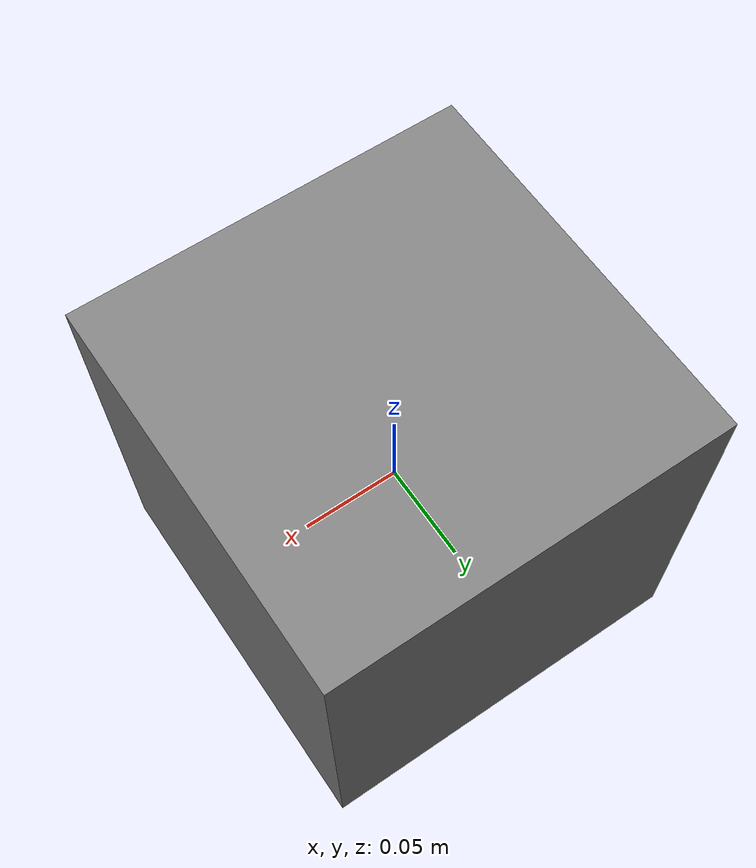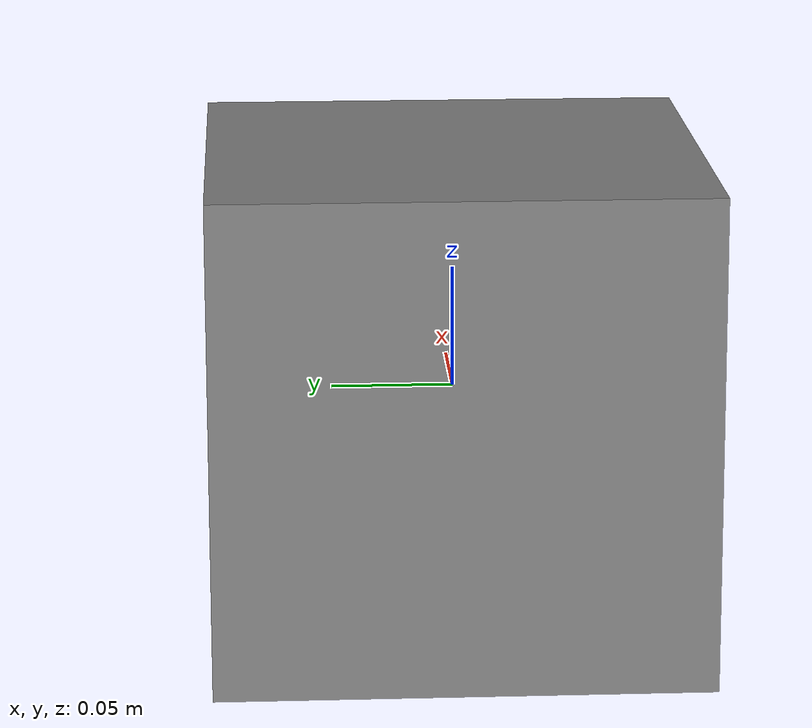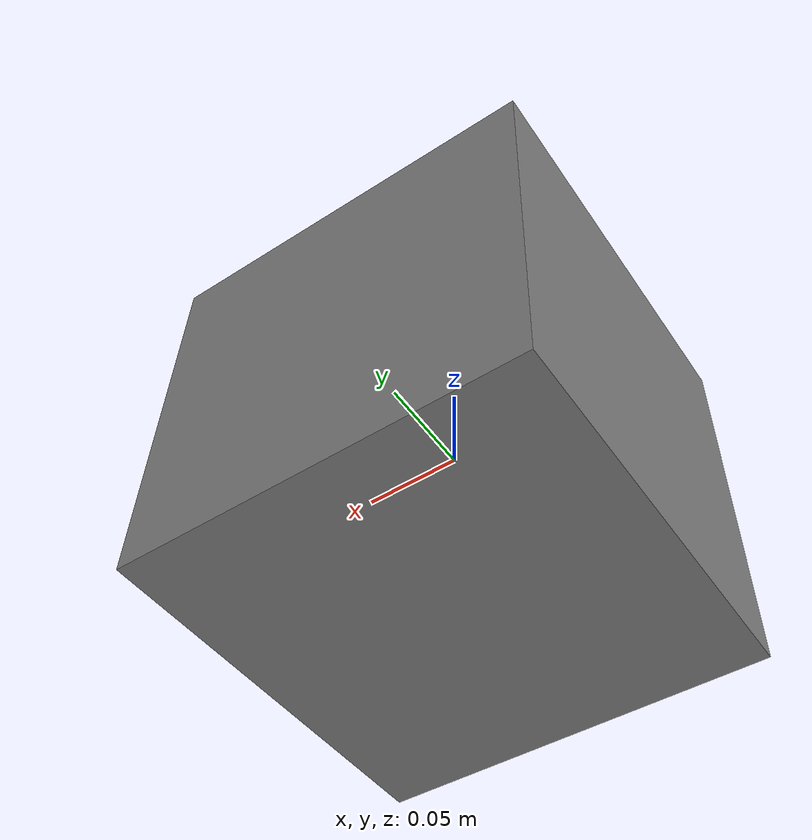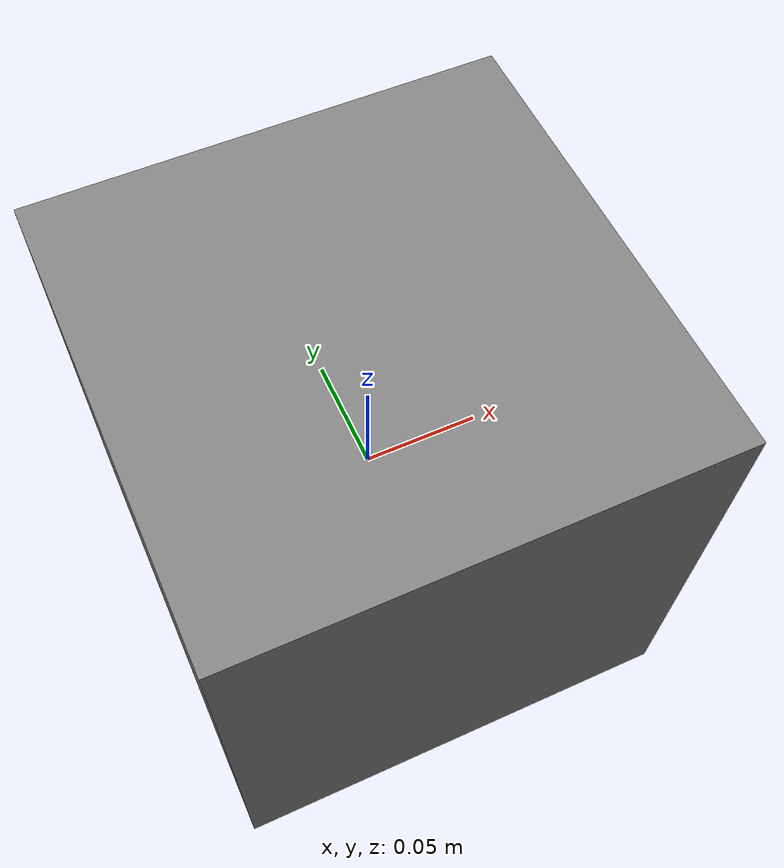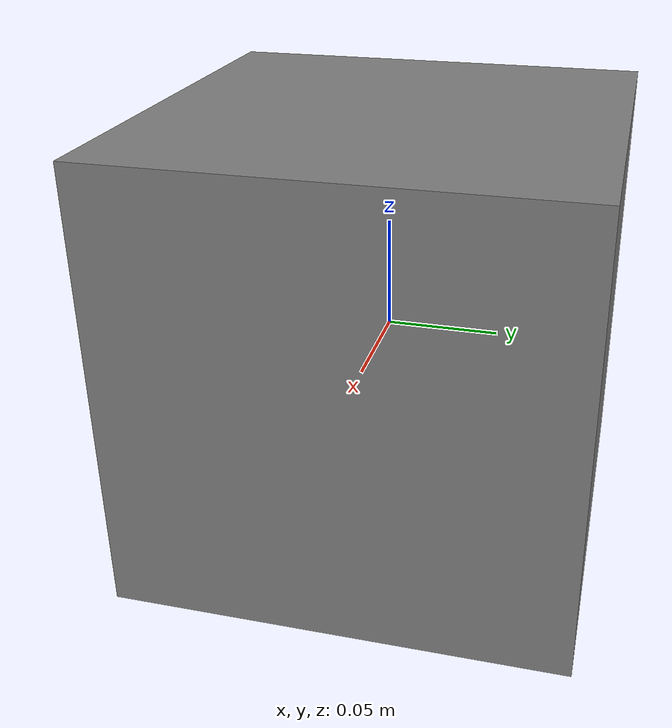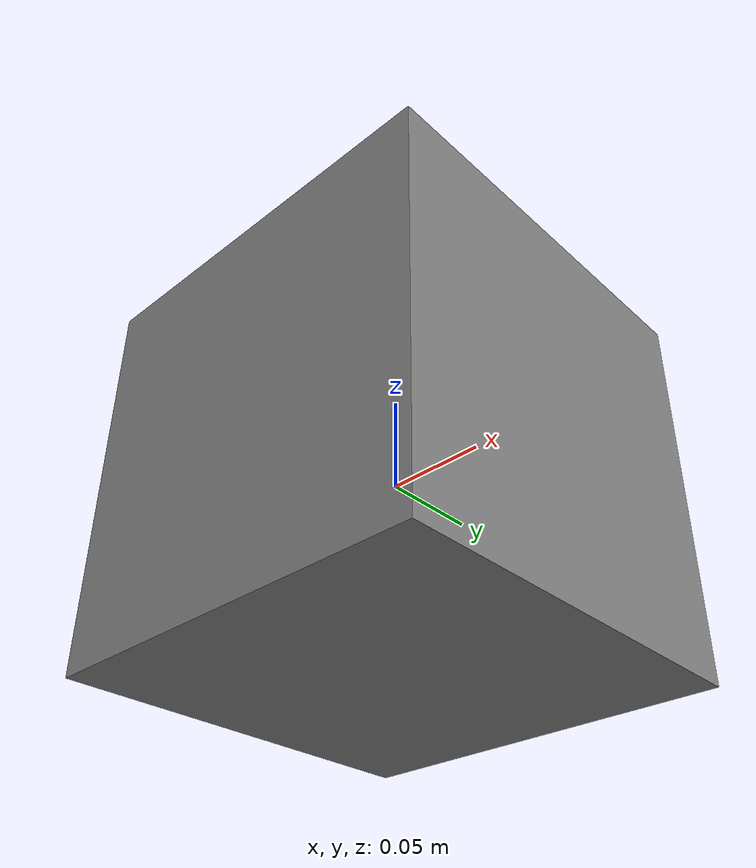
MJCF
<!--
    The body needs its mass baked, which requires a compiled model, but the zero-sized geom
    makes the model fail to compile. Conversion must continue without the mass properties.
-->
<mujoco model="mass_bake_uncompilable">
    <worldbody>
        <body name="uncompilable">
            <geom type="box" name="visual" size="0.1 0.1 0.1" contype="0" conaffinity="0" mass="1.0"/>
            <geom type="box" name="degenerate" size="0 0.1 0.1" contype="1" conaffinity="1" mass="2.0"/>
        </body>
    </worldbody>
</mujoco>
